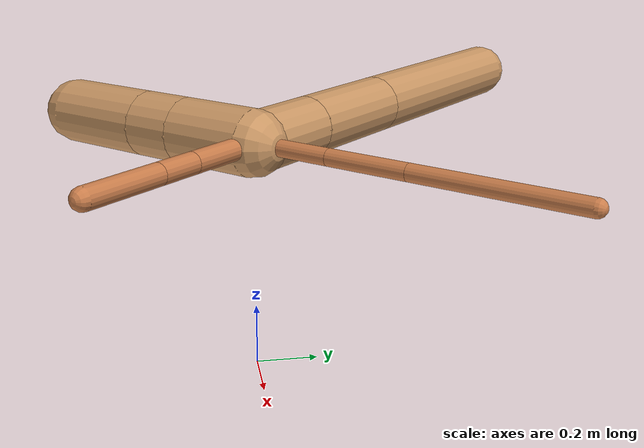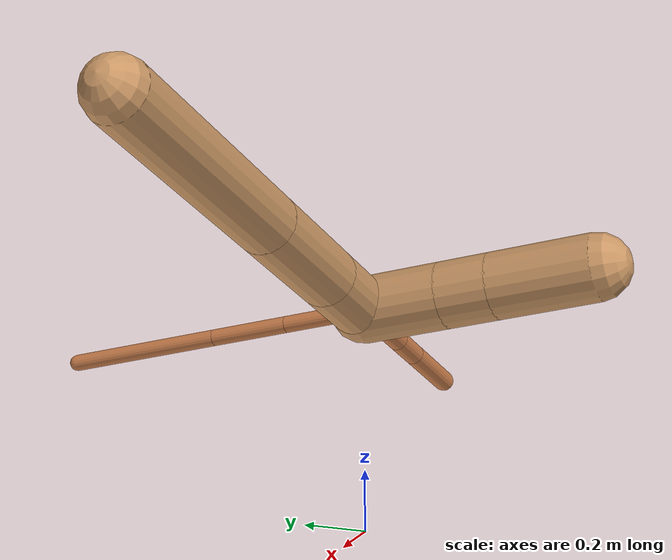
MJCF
<?xml version="1.0" ?>
<mujoco model="ant">

	<compiler angle="degree" coordinate="local" inertiafromgeom="true"/>

	<option integrator="RK4" timestep="0.01"/>

	<custom>

		<numeric data="0.0 0.0 0.55 1.0 0.0 0.0 0.0 0.0 1.0 0.0 -1.0 0.0 -1.0 0.0 1.0" name="init_qpos"/>

	</custom>

	<default>

		<joint armature="1" damping="1" limited="true"/>

		<geom conaffinity="0" condim="3" density="5.0" friction="1.5 0.1 0.1" margin="0.01" rgba="0.8 0.6 0.4 1"/>

	</default>

	<worldbody>

		<body name="torso" pos="0 0 0.75">

			<geom name="torso_geom" pos="0 0 0" size="0.0941200137456141" type="sphere"/>

			<!--joint armature="0" damping="0" limited="false" margin="0.01" name="root" pos="0 0 0" type="free"/-->

			<body name="front_left_leg" pos="0 0 0">

				<geom fromto="0 0 0 0.2 0.2 0" name="aux_1_geom" size="0.027865660270051204" type="capsule" rgba=".8 .5 .3 1"/>

				<body name="aux_1" pos="0.2 0.2 0">

					<joint axis="0 0 1" name="hip_1" pos="0.0 0.0 0.0" range="-40 40" type="hinge"/>

					<geom fromto="0 0 0 0.19292225155559714 0.19292225155559714 0" name="left_leg_geom" size="0.027865660270051204" type="capsule" rgba=".8 .5 .3 1"/>

					<body pos="0.19292225155559714 0.19292225155559714 0" name="front_left_foot">

						<joint axis="-1 1 0" name="ankle_1" pos="0.0 0.0 0.0" range="30 100" type="hinge"/>

						<geom fromto="0 0 0 0.3858445031111943 0.3858445031111943 0" name="left_ankle_geom" size="0.027865660270051204" type="capsule" rgba=".8 .5 .3 1"/>

					</body>

				</body>

			</body>

			<body name="front_right_leg" pos="0 0 0">

				<geom fromto="0 0 0 -0.2 0.2 0" name="aux_2_geom" size="0.10032743883639075" type="capsule"/>

				<body name="aux_2" pos="-0.2 0.2 0">

					<joint axis="0 0 1" name="hip_2" pos="0.0 0.0 0.0" range="-40 40" type="hinge"/>

					<geom fromto="0 0 0 -0.2953420724447633 0.2953420724447633 0" name="right_leg_geom" size="0.10032743883639075" type="capsule"/>

					<body pos="-0.2953420724447633 0.2953420724447633 0" name="front_right_foot">

						<joint axis="1 1 0" name="ankle_2" pos="0.0 0.0 0.0" range="-100 -30" type="hinge"/>

						<geom fromto="0 0 0 -0.5906841448895266 0.5906841448895266 0" name="right_ankle_geom" size="0.10032743883639075" type="capsule"/>

					</body>

				</body>

			</body>

			<body name="left_back_leg" pos="0 0 0">

				<geom fromto="0 0 0 -0.2 -0.2 0" name="aux_3_geom" size="0.1098030679859293" type="capsule"/>

				<body name="aux_3" pos="-0.2 -0.2 0">

					<joint axis="0 0 1" name="hip_3" pos="0.0 0.0 0.0" range="-40 40" type="hinge"/>

					<geom fromto="0 0 0 -0.12066870003807569 -0.12066870003807569 0" name="back_leg_geom" size="0.1098030679859293" type="capsule"/>

					<body pos="-0.12066870003807569 -0.12066870003807569 0" name="left_back_foot">

						<joint axis="-1 1 0" name="ankle_3" pos="0.0 0.0 0.0" range="-100 -30" type="hinge"/>

						<geom fromto="0 0 0 -0.24133740007615137 -0.24133740007615137 0" name="third_ankle_geom" size="0.1098030679859293" type="capsule"/>

					</body>

				</body>

			</body>

			<body name="right_back_leg" pos="0 0 0">

				<geom fromto="0 0 0 0.2 -0.2 0" name="aux_4_geom" size="0.035217775089106666" type="capsule" rgba=".8 .5 .3 1"/>

				<body name="aux_4" pos="0.2 -0.2 0">

					<joint axis="0 0 1" name="hip_4" pos="0.0 0.0 0.0" range="-40 40" type="hinge"/>

					<geom fromto="0 0 0 0.0993288972675527 -0.0993288972675527 0" name="rightback_leg_geom" size="0.035217775089106666" type="capsule" rgba=".8 .5 .3 1"/>

					<body pos="0.0993288972675527 -0.0993288972675527 0" name="right_back_foot">

						<joint axis="1 1 0" name="ankle_4" pos="0.0 0.0 0.0" range="30 100" type="hinge"/>

						<geom fromto="0 0 0 0.1986577945351054 -0.1986577945351054 0" name="fourth_ankle_geom" size="0.035217775089106666" type="capsule" rgba=".8 .5 .3 1"/>

					</body>

				</body>

			</body>

		</body>

	</worldbody>

	<actuator>

		<motor ctrllimited="true" ctrlrange="-1.0 1.0" joint="hip_4" gear="150"/>

		<motor ctrllimited="true" ctrlrange="-1.0 1.0" joint="ankle_4" gear="150"/>

		<motor ctrllimited="true" ctrlrange="-1.0 1.0" joint="hip_1" gear="150"/>

		<motor ctrllimited="true" ctrlrange="-1.0 1.0" joint="ankle_1" gear="150"/>

		<motor ctrllimited="true" ctrlrange="-1.0 1.0" joint="hip_2" gear="150"/>

		<motor ctrllimited="true" ctrlrange="-1.0 1.0" joint="ankle_2" gear="150"/>

		<motor ctrllimited="true" ctrlrange="-1.0 1.0" joint="hip_3" gear="150"/>

		<motor ctrllimited="true" ctrlrange="-1.0 1.0" joint="ankle_3" gear="150"/>

	</actuator>

</mujoco>
